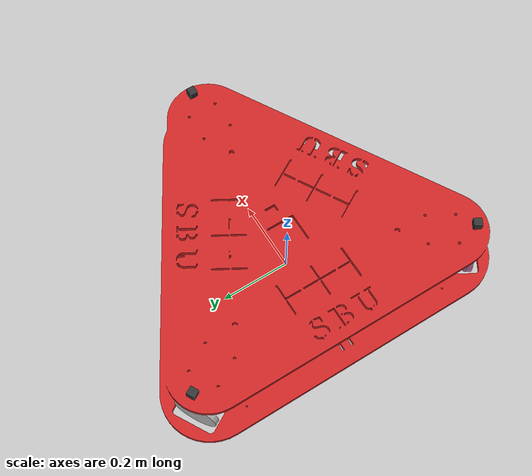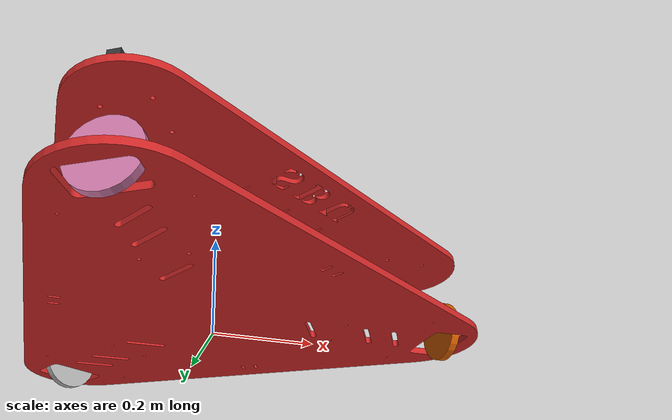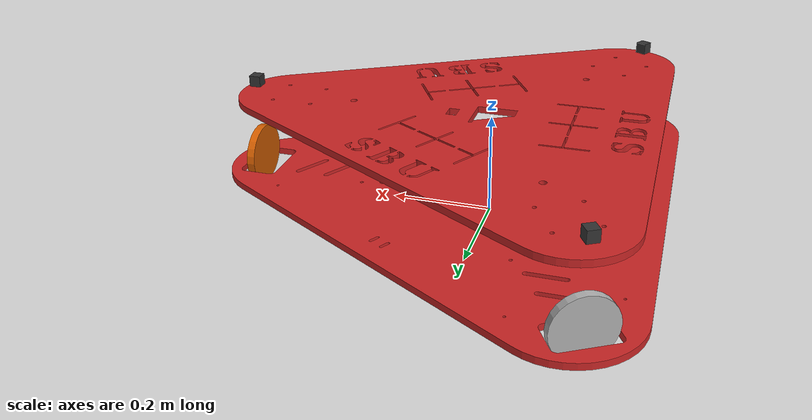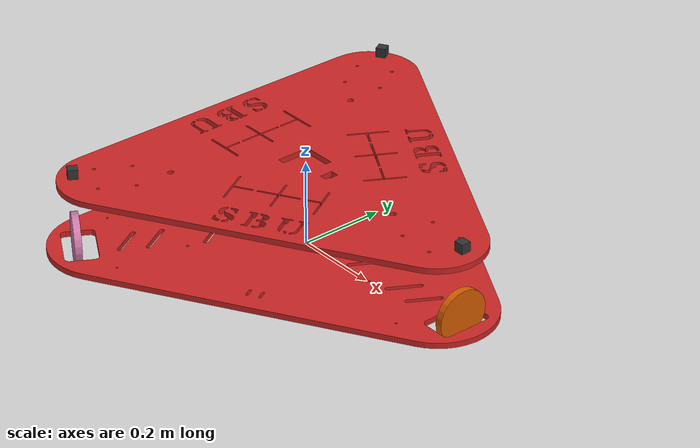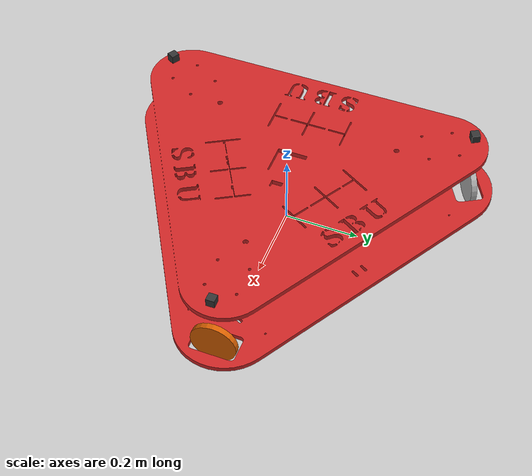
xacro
<?xml version="1.0"?>
<robot xmlns:xacro="http://www.ros.org/wiki/xacro" name="robot">

 <xacro:property name="M_PI" value="3.1415926535897931" />
 <xacro:property name="rob_scale" value="0.225"/>
 <xacro:property name="camera_z" value="${rob_scale}"/>
 <xacro:property name="base_z" value="${rob_scale*0.52}"/>

<xacro:property name="right_wheel_x" value="${rob_scale*2.195}"/>
<xacro:property name="right_wheel_y" value="${rob_scale*0}"/>
<xacro:property name="right_wheel_z" value="${rob_scale*0.27}"/>

<xacro:property name="right_wheel_length" value="${rob_scale*0.07}"/>
<xacro:property name="right_wheel_radius" value="${rob_scale*0.27}"/>
<xacro:property name="right_wheel_mass" value="${rob_scale*40}"/>

<xacro:property name="left_wheel_x" value="${rob_scale*-1.10000}"/>
<xacro:property name="left_wheel_y" value="${rob_scale*-1.9}"/>
<xacro:property name="left_wheel_z" value="${rob_scale*0.27}"/>

<xacro:property name="left_wheel_length" value="${rob_scale*0.07}"/>
<xacro:property name="left_wheel_radius" value="${rob_scale*0.27}"/>
<xacro:property name="left_wheel_mass" value="${rob_scale*40}"/>

<xacro:property name="left2_wheel_x" value="${rob_scale*-1.10000}"/>
<xacro:property name="left2_wheel_y" value="${rob_scale*1.9}"/>
<xacro:property name="left2_wheel_z" value="${rob_scale*0.27}"/>

<xacro:property name="left2_wheel_length" value="${rob_scale*0.07}"/>
<xacro:property name="left2_wheel_radius" value="${rob_scale*0.27}"/>
<xacro:property name="left2_wheel_mass" value="${rob_scale*40}"/>

<xacro:property name="sensor_size" value="${rob_scale*0.1}"/>

  <gazebo>
  <plugin name="gazebo_ros_control" filename="libgazebo_ros_control.so">
  <robotNamespace>/robot</robotNamespace>
  </plugin>

</gazebo>

  <xacro:macro name="surface_gen" params="main_link_name">
      <gazebo reference="${main_link_name}">
      <mu1>5000.0</mu1>
      <mu2>0</mu2>
      <fdir1>1 0 0</fdir1>
      <maxContacts>1</maxContacts>
      <minDepth>0.005</minDepth>
      <gravity>true</gravity>
            <surface>
      <friction>
      <ode>
      <slip1>0</slip1>
      <slip2>0</slip2>
    </ode>
              <torsional>
            <coefficient>1.0</coefficient>
            <surface_radius>0.5</surface_radius>
            <use_patch_radius>false</use_patch_radius>
          </torsional>
  	</friction>
	</surface>
  </gazebo>
  </xacro:macro>

  <xacro:macro name="box_inertia" params="m w h d">
    <inertial>
      <mass value="${m}"/>
      <inertia ixx="${m / 12.0 * (d*d + h*h)}" ixy="0.0" ixz="0.0" iyy="${m / 12.0 * (w*w + h*h)}" iyz="0.0" izz="${m / 12.0 * (w*w + d*d)}"/>
    </inertial>
  </xacro:macro>
  <xacro:macro name="sonar_link_gen" params="parent link_name link_x link_y link_z link_r link_p link_yaw">

   <link name="${link_name}">
        <origin xyz="${link_x} ${link_y} ${link_z}" rpy="${link_r} ${link_p} ${link_yaw}" />
      <collision>
        <geometry>
          <box size="${sensor_size} ${sensor_size} ${sensor_size}" />

        </geometry>
      </collision>

      <visual>
        <geometry>
          <box size="${sensor_size} ${sensor_size} ${sensor_size}" />
        </geometry>
        <material name="grey">
            <color rgba="0.2 0.2 0.2 1.0"/>
        </material>
      </visual>

	<xacro:box_inertia m="0.001" w="${sensor_size}" h="${sensor_size}" d="${sensor_size}"/>

  </link>

     <joint name="${link_name}_joint" type="fixed">
        <parent link="${parent}"/>
        <child link="${link_name}"/>
        <origin rpy="${link_r} ${link_p} ${link_yaw}" xyz="${link_x} ${link_y} ${link_z}"/>
        <axis xyz="1 0 0" />
    </joint>

      <gazebo reference="${link_name}">
	    <sensor type="ray" name="sonar_${link_name}">
	  <pose>0.25 0 0 0 0 0</pose>
	  <update_rate>5</update_rate>
	  <ray>
	    <scan>
	      <horizontal>
		<samples>5</samples>
		<resolution>1.0</resolution>
		<min_angle>-0.1</min_angle>
		<max_angle>0.1</max_angle>
	      </horizontal>
	      <vertical>
		<samples>5</samples>
		<resolution>1</resolution>
		<min_angle>-0.1</min_angle>
		<max_angle>0.1</max_angle>
	      </vertical>
	    </scan>
	    <range>
	      <min>0.02</min>
	      <max>1.5</max>
	      <resolution>0.01</resolution>
	    </range>
	  </ray>
	  <plugin filename="libgazebo_ros_range.so" name="gazebo_ros_range">
	    <gaussianNoise>0.005</gaussianNoise>
	    <alwaysOn>true</alwaysOn>
	    <updateRate>5</updateRate>
	    <topicName>sonar_${link_name}</topicName>
	    <frameName>${link_name}</frameName>
	    <fov>0.5</fov>
	    <radiation>ultrasound</radiation>
	  </plugin>
	</sensor>
    </gazebo>

  </xacro:macro>

   <!--Interial macros-->
  <xacro:macro name="cylinder_inertia" params="m r h">
    <inertial>
      <mass value="${m}"/>
      <inertia ixx="${m*(3*r*r+h*h)/12}" ixy = "0" ixz = "0" iyy="${m*(3*r*r+h*h)/12}" iyz = "0" izz="${m*r*r/2}"/>
    </inertial>
  </xacro:macro>

   <xacro:sonar_link_gen parent="base_link" link_name="sonar_link_1" link_x="${left2_wheel_x}" link_y="${left2_wheel_y}" link_z="${camera_z}" link_r="0" link_p="0" link_yaw="${M_PI/2 + M_PI/6}" />

  <xacro:sonar_link_gen parent="base_link" link_name="sonar_link_2" link_x="${right_wheel_x}" link_y="${right_wheel_y}" link_z="${camera_z}" link_r="0" link_p="0" link_yaw="${0}" />

  <xacro:sonar_link_gen parent="base_link" link_name="sonar_link_3" link_x="${left_wheel_x}" link_y="${left_wheel_y}" link_z="${camera_z}" link_r="0" link_p="0" link_yaw="${-(M_PI/2 + M_PI/6)}" />

 <link name="dummy">
   </link>

<link name="base_link">
    <inertial>
      <mass value="0.03"/>
      <origin xyz="0 0 ${base_z}" rpy="0 0 3.14"/>
      <inertia ixx="0.0738" ixy="0" ixz="0" iyy="0.0738" iyz="-0.000000" izz="0.1304"/>
    </inertial>
	<visual>
	<origin xyz="0 0 ${base_z}" rpy="0 0 3.14"/>
	<geometry>
        <mesh filename="package://rob_pkg/meshes/two_plate_s.dae" />
      </geometry>
      <material name="red"/>
    </visual>
    <collision >
	<origin xyz="0 0 ${base_z}" rpy="0 0 3.14"/>
      <geometry>
        <mesh filename="package://rob_pkg/meshes/two_plate_s.dae"   />
      </geometry>
    </collision>

  </link>
  <joint name="dummy_joint" type="fixed">
     <parent link="dummy"/>
     <child link="base_link"/>
   </joint>

    <link name="link_right_wheel">
      <mass value="${right_wheel_mass}"/>
      <origin rpy="0 ${M_PI/2} 0" xyz="${right_wheel_x} ${right_wheel_y} ${right_wheel_z}"/>
    <collision name="link_right_wheel_collision">
	<geometry>
	 <cylinder length="${right_wheel_length}" radius="${right_wheel_radius}" />
	</geometry>
    </collision>
    <visual name="link_right_wheel_visual">
	<geometry>
	 <cylinder length="${right_wheel_length}" radius="${right_wheel_radius}" />
	</geometry>
    </visual>
 <xacro:cylinder_inertia m="${right_wheel_mass}" r="${right_wheel_radius}" h="${right_wheel_length}"/>
  </link>
  <xacro:surface_gen main_link_name="link_right_wheel"/>
  <!-- Rear wheels transmission -->
<transmission name="transmission_right_wheel">
    <type>transmission_interface/SimpleTransmission</type>
    <joint name="joint_right_wheel">
        <hardwareInterface>hardware_interface/VelocityJointInterface</hardwareInterface>
    </joint>
    <actuator name="motor_right_wheel">
        <hardwareInterface>hardware_interface/VelocityJointInterface</hardwareInterface>
        <mechanicalReduction>1</mechanicalReduction>
    </actuator>
</transmission>

  <joint name="joint_right_wheel" type="continuous">
	<origin rpy="0 ${M_PI/2} 0" xyz="${right_wheel_x} 0 ${right_wheel_z}"/>
    <child link="link_right_wheel"/>
    <parent link="base_link"/>
    <axis rpy="0 0 0" xyz="0 0 1"/>
  </joint>

    <link name="link_left_wheel">
      <mass value="${left_wheel_mass}"/>
      <origin rpy="0 ${M_PI/2} ${M_PI/3}" xyz="${left_wheel_x} ${left_wheel_y} ${left_wheel_z}"/>
    <collision name="link_left_wheel_collision">
	<geometry>
	 <cylinder length="${left_wheel_length}" radius="${left_wheel_radius}" />
	</geometry>
    </collision>
    <visual name="link_left_wheel_visual">
	<geometry>
	 <cylinder length="${left_wheel_length}" radius="${left_wheel_radius}" />
	</geometry>
    </visual>
    <xacro:cylinder_inertia m="${right_wheel_mass}" r="${right_wheel_radius}" h="${right_wheel_length}"/>
  </link>

<xacro:surface_gen main_link_name="link_left_wheel"/>
<!-- Rear wheels transmission -->
<transmission name="transmission_left_wheel">
    <type>transmission_interface/SimpleTransmission</type>
    <joint name="joint_left_wheel">
        <hardwareInterface>hardware_interface/VelocityJointInterface</hardwareInterface>
    </joint>
    <actuator name="motor_left_wheel">
        <hardwareInterface>hardware_interface/VelocityJointInterface</hardwareInterface>
        <mechanicalReduction>1</mechanicalReduction>
    </actuator>
</transmission>

  <joint name="joint_left_wheel" type="continuous">
  <origin rpy="0 ${M_PI/2} ${M_PI/3}" xyz="${left_wheel_x} ${left_wheel_y} ${left_wheel_z}"/>
    <child link="link_left_wheel"/>
    <parent link="base_link"/>
    <axis rpy="0 0 0" xyz="0 0 1"/>
  </joint>

    <link name="link_left2_wheel">
      <mass value="${left2_wheel_mass}"/>
      <origin rpy="0 ${M_PI/2} ${M_PI*2/3}" xyz="${left2_wheel_x} ${left2_wheel_y} ${left2_wheel_z}"/>
    <collision name="link_left2_wheel_collision">
	<geometry>
	 <cylinder length="${left2_wheel_length}" radius="${left2_wheel_radius}" />
	</geometry>
    </collision>
    <visual name="link_left2_wheel_visual">
	<geometry>
	 <cylinder length="${left2_wheel_length}" radius="${left2_wheel_radius}" />
	</geometry>
    </visual>
    <xacro:cylinder_inertia m="${right_wheel_mass}" r="${right_wheel_radius}" h="${right_wheel_length}"/>
  </link>

<xacro:surface_gen main_link_name="link_left2_wheel"/>

  <joint name="joint_left2_wheel" type="continuous">
  <origin rpy="0 ${M_PI/2} ${M_PI*2/3}" xyz="${left2_wheel_x} ${left2_wheel_y} ${left2_wheel_z}"/>
    <child link="link_left2_wheel"/>
    <parent link="base_link"/>
    <axis rpy="0 0 0" xyz="0 0 1"/>
  </joint>
 <!-- Rear wheels transmission -->
<transmission name="transmission_left2_wheel">
    <type>transmission_interface/SimpleTransmission</type>
    <joint name="joint_left2_wheel">
        <hardwareInterface>hardware_interface/VelocityJointInterface</hardwareInterface>
    </joint>
    <actuator name="motor_left2_wheel">
        <hardwareInterface>hardware_interface/VelocityJointInterface</hardwareInterface>
        <mechanicalReduction>1</mechanicalReduction>
    </actuator>
</transmission>

</robot>
